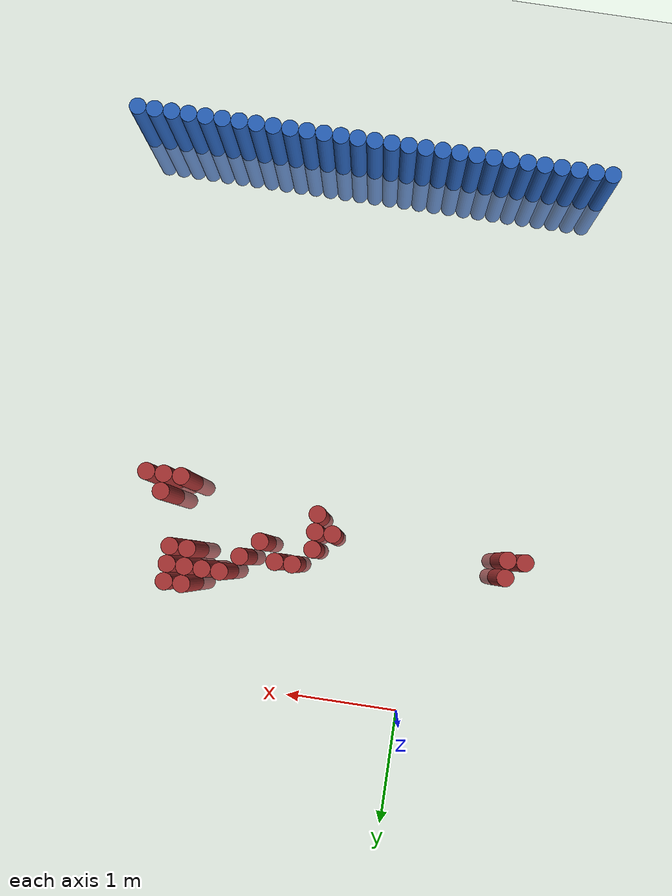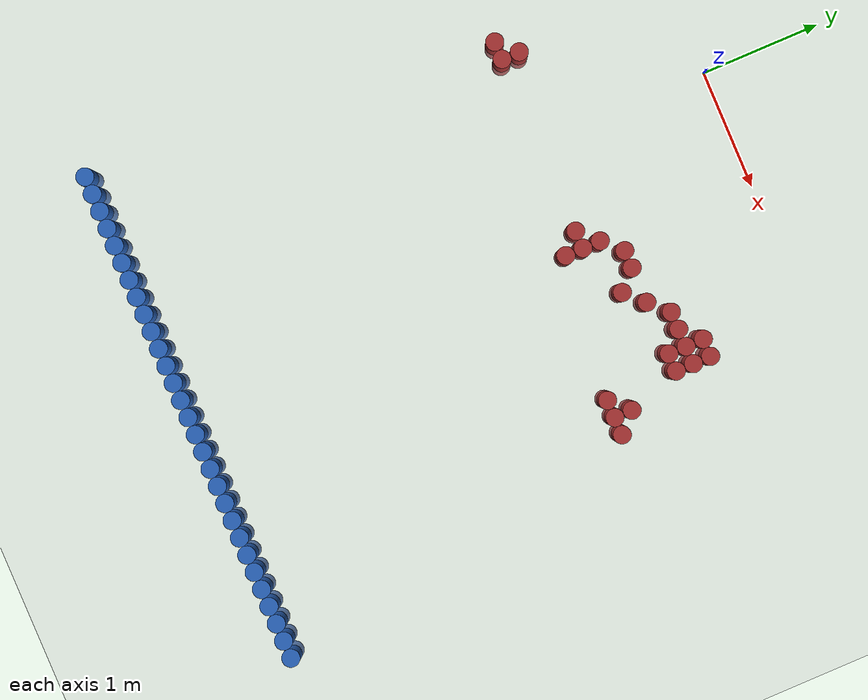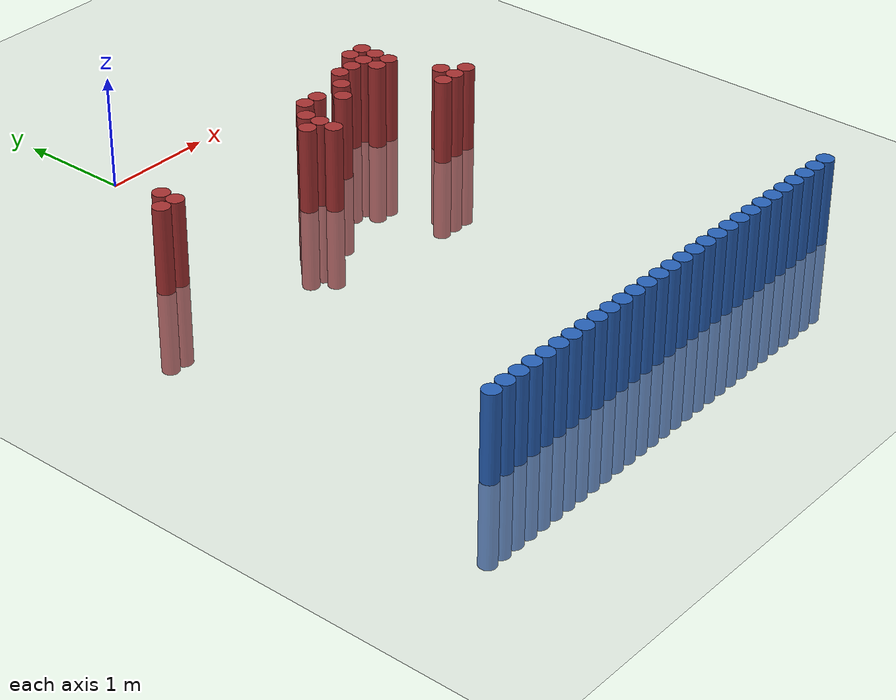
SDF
<sdf version="1.6">
 <world name="default">
  <model name="ground_plane">
   <static>1</static>
   <link name="link">
    <collision name="collision">
     <geometry><plane><normal>0 0 1</normal><size>100 100</size></plane></geometry>
     <surface><friction><ode><mu>100</mu><mu2>50</mu2></ode></friction></surface>
    </collision>
    <visual name="visual">
     <cast_shadows>0</cast_shadows>
     <geometry><plane><normal>0 0 1</normal><size>100 100</size></plane></geometry>
     <material>
      <script><uri>file://media/materials/scripts/gazebo.material</uri><name>Gazebo/Grey</name></script>
     </material>
    </visual>
   </link>
  </model>
  <model name="unit_cylinder_6">
   <static>1</static>
   <pose>3.025000 -4.925000 0.000000 0.000000 0.000000 0.000000</pose>
   <link name="link">
    <inertial>
     <mass>1</mass>
     <inertia><ixx>0.145833</ixx><ixy>0</ixy><ixz>0</ixz><iyy>0.145833</iyy><iyz>0</iyz><izz>0.125</izz></inertia>
    </inertial>
    <collision name="collision">
     <geometry><cylinder><radius>0.075000</radius><length>1.5</length></cylinder></geometry>
    </collision>
    <visual name="visual">
     <geometry><cylinder><radius>0.075000</radius><length>1.5</length></cylinder></geometry>
     <material>
      <ambient>0.152000 0.379000 0.720000 1</ambient>
      <diffuse>0.152000 0.379000 0.720000 1</diffuse>
     </material>
     <material>
      <script><name>Gazebo/Grey</name><uri>file://media/materials/scripts/gazebo.material</uri></script>
     </material>
    </visual>
   </link>
  </model>
  <model name="unit_cylinder_7">
   <static>1</static>
   <pose>2.875000 -4.925000 0.000000 0.000000 0.000000 0.000000</pose>
   <link name="link">
    <inertial>
     <mass>1</mass>
     <inertia><ixx>0.145833</ixx><ixy>0</ixy><ixz>0</ixz><iyy>0.145833</iyy><iyz>0</iyz><izz>0.125</izz></inertia>
    </inertial>
    <collision name="collision">
     <geometry><cylinder><radius>0.075000</radius><length>1.5</length></cylinder></geometry>
    </collision>
    <visual name="visual">
     <geometry><cylinder><radius>0.075000</radius><length>1.5</length></cylinder></geometry>
     <material>
      <ambient>0.152000 0.379000 0.720000 1</ambient>
      <diffuse>0.152000 0.379000 0.720000 1</diffuse>
     </material>
     <material>
      <script><name>Gazebo/Grey</name><uri>file://media/materials/scripts/gazebo.material</uri></script>
     </material>
    </visual>
   </link>
  </model>
  <model name="unit_cylinder_8">
   <static>1</static>
   <pose>2.725000 -4.925000 0.000000 0.000000 0.000000 0.000000</pose>
   <link name="link">
    <inertial>
     <mass>1</mass>
     <inertia><ixx>0.145833</ixx><ixy>0</ixy><ixz>0</ixz><iyy>0.145833</iyy><iyz>0</iyz><izz>0.125</izz></inertia>
    </inertial>
    <collision name="collision">
     <geometry><cylinder><radius>0.075000</radius><length>1.5</length></cylinder></geometry>
    </collision>
    <visual name="visual">
     <geometry><cylinder><radius>0.075000</radius><length>1.5</length></cylinder></geometry>
     <material>
      <ambient>0.152000 0.379000 0.720000 1</ambient>
      <diffuse>0.152000 0.379000 0.720000 1</diffuse>
     </material>
     <material>
      <script><name>Gazebo/Grey</name><uri>file://media/materials/scripts/gazebo.material</uri></script>
     </material>
    </visual>
   </link>
  </model>
  <model name="unit_cylinder_9">
   <static>1</static>
   <pose>2.575000 -4.925000 0.000000 0.000000 0.000000 0.000000</pose>
   <link name="link">
    <inertial>
     <mass>1</mass>
     <inertia><ixx>0.145833</ixx><ixy>0</ixy><ixz>0</ixz><iyy>0.145833</iyy><iyz>0</iyz><izz>0.125</izz></inertia>
    </inertial>
    <collision name="collision">
     <geometry><cylinder><radius>0.075000</radius><length>1.5</length></cylinder></geometry>
    </collision>
    <visual name="visual">
     <geometry><cylinder><radius>0.075000</radius><length>1.5</length></cylinder></geometry>
     <material>
      <ambient>0.152000 0.379000 0.720000 1</ambient>
      <diffuse>0.152000 0.379000 0.720000 1</diffuse>
     </material>
     <material>
      <script><name>Gazebo/Grey</name><uri>file://media/materials/scripts/gazebo.material</uri></script>
     </material>
    </visual>
   </link>
  </model>
  <model name="unit_cylinder_10">
   <static>1</static>
   <pose>2.425000 -4.925000 0.000000 0.000000 0.000000 0.000000</pose>
   <link name="link">
    <inertial>
     <mass>1</mass>
     <inertia><ixx>0.145833</ixx><ixy>0</ixy><ixz>0</ixz><iyy>0.145833</iyy><iyz>0</iyz><izz>0.125</izz></inertia>
    </inertial>
    <collision name="collision">
     <geometry><cylinder><radius>0.075000</radius><length>1.5</length></cylinder></geometry>
    </collision>
    <visual name="visual">
     <geometry><cylinder><radius>0.075000</radius><length>1.5</length></cylinder></geometry>
     <material>
      <ambient>0.152000 0.379000 0.720000 1</ambient>
      <diffuse>0.152000 0.379000 0.720000 1</diffuse>
     </material>
     <material>
      <script><name>Gazebo/Grey</name><uri>file://media/materials/scripts/gazebo.material</uri></script>
     </material>
    </visual>
   </link>
  </model>
  <model name="unit_cylinder_11">
   <static>1</static>
   <pose>2.275000 -4.925000 0.000000 0.000000 0.000000 0.000000</pose>
   <link name="link">
    <inertial>
     <mass>1</mass>
     <inertia><ixx>0.145833</ixx><ixy>0</ixy><ixz>0</ixz><iyy>0.145833</iyy><iyz>0</iyz><izz>0.125</izz></inertia>
    </inertial>
    <collision name="collision">
     <geometry><cylinder><radius>0.075000</radius><length>1.5</length></cylinder></geometry>
    </collision>
    <visual name="visual">
     <geometry><cylinder><radius>0.075000</radius><length>1.5</length></cylinder></geometry>
     <material>
      <ambient>0.152000 0.379000 0.720000 1</ambient>
      <diffuse>0.152000 0.379000 0.720000 1</diffuse>
     </material>
     <material>
      <script><name>Gazebo/Grey</name><uri>file://media/materials/scripts/gazebo.material</uri></script>
     </material>
    </visual>
   </link>
  </model>
  <model name="unit_cylinder_12">
   <static>1</static>
   <pose>2.125000 -4.925000 0.000000 0.000000 0.000000 0.000000</pose>
   <link name="link">
    <inertial>
     <mass>1</mass>
     <inertia><ixx>0.145833</ixx><ixy>0</ixy><ixz>0</ixz><iyy>0.145833</iyy><iyz>0</iyz><izz>0.125</izz></inertia>
    </inertial>
    <collision name="collision">
     <geometry><cylinder><radius>0.075000</radius><length>1.5</length></cylinder></geometry>
    </collision>
    <visual name="visual">
     <geometry><cylinder><radius>0.075000</radius><length>1.5</length></cylinder></geometry>
     <material>
      <ambient>0.152000 0.379000 0.720000 1</ambient>
      <diffuse>0.152000 0.379000 0.720000 1</diffuse>
     </material>
     <material>
      <script><name>Gazebo/Grey</name><uri>file://media/materials/scripts/gazebo.material</uri></script>
     </material>
    </visual>
   </link>
  </model>
  <model name="unit_cylinder_13">
   <static>1</static>
   <pose>1.975000 -4.925000 0.000000 0.000000 0.000000 0.000000</pose>
   <link name="link">
    <inertial>
     <mass>1</mass>
     <inertia><ixx>0.145833</ixx><ixy>0</ixy><ixz>0</ixz><iyy>0.145833</iyy><iyz>0</iyz><izz>0.125</izz></inertia>
    </inertial>
    <collision name="collision">
     <geometry><cylinder><radius>0.075000</radius><length>1.5</length></cylinder></geometry>
    </collision>
    <visual name="visual">
     <geometry><cylinder><radius>0.075000</radius><length>1.5</length></cylinder></geometry>
     <material>
      <ambient>0.152000 0.379000 0.720000 1</ambient>
      <diffuse>0.152000 0.379000 0.720000 1</diffuse>
     </material>
     <material>
      <script><name>Gazebo/Grey</name><uri>file://media/materials/scripts/gazebo.material</uri></script>
     </material>
    </visual>
   </link>
  </model>
  <model name="unit_cylinder_14">
   <static>1</static>
   <pose>1.825000 -4.925000 0.000000 0.000000 0.000000 0.000000</pose>
   <link name="link">
    <inertial>
     <mass>1</mass>
     <inertia><ixx>0.145833</ixx><ixy>0</ixy><ixz>0</ixz><iyy>0.145833</iyy><iyz>0</iyz><izz>0.125</izz></inertia>
    </inertial>
    <collision name="collision">
     <geometry><cylinder><radius>0.075000</radius><length>1.5</length></cylinder></geometry>
    </collision>
    <visual name="visual">
     <geometry><cylinder><radius>0.075000</radius><length>1.5</length></cylinder></geometry>
     <material>
      <ambient>0.152000 0.379000 0.720000 1</ambient>
      <diffuse>0.152000 0.379000 0.720000 1</diffuse>
     </material>
     <material>
      <script><name>Gazebo/Grey</name><uri>file://media/materials/scripts/gazebo.material</uri></script>
     </material>
    </visual>
   </link>
  </model>
  <model name="unit_cylinder_15">
   <static>1</static>
   <pose>1.675000 -4.925000 0.000000 0.000000 0.000000 0.000000</pose>
   <link name="link">
    <inertial>
     <mass>1</mass>
     <inertia><ixx>0.145833</ixx><ixy>0</ixy><ixz>0</ixz><iyy>0.145833</iyy><iyz>0</iyz><izz>0.125</izz></inertia>
    </inertial>
    <collision name="collision">
     <geometry><cylinder><radius>0.075000</radius><length>1.5</length></cylinder></geometry>
    </collision>
    <visual name="visual">
     <geometry><cylinder><radius>0.075000</radius><length>1.5</length></cylinder></geometry>
     <material>
      <ambient>0.152000 0.379000 0.720000 1</ambient>
      <diffuse>0.152000 0.379000 0.720000 1</diffuse>
     </material>
     <material>
      <script><name>Gazebo/Grey</name><uri>file://media/materials/scripts/gazebo.material</uri></script>
     </material>
    </visual>
   </link>
  </model>
  <model name="unit_cylinder_16">
   <static>1</static>
   <pose>1.525000 -4.925000 0.000000 0.000000 0.000000 0.000000</pose>
   <link name="link">
    <inertial>
     <mass>1</mass>
     <inertia><ixx>0.145833</ixx><ixy>0</ixy><ixz>0</ixz><iyy>0.145833</iyy><iyz>0</iyz><izz>0.125</izz></inertia>
    </inertial>
    <collision name="collision">
     <geometry><cylinder><radius>0.075000</radius><length>1.5</length></cylinder></geometry>
    </collision>
    <visual name="visual">
     <geometry><cylinder><radius>0.075000</radius><length>1.5</length></cylinder></geometry>
     <material>
      <ambient>0.152000 0.379000 0.720000 1</ambient>
      <diffuse>0.152000 0.379000 0.720000 1</diffuse>
     </material>
     <material>
      <script><name>Gazebo/Grey</name><uri>file://media/materials/scripts/gazebo.material</uri></script>
     </material>
    </visual>
   </link>
  </model>
  <model name="unit_cylinder_17">
   <static>1</static>
   <pose>1.375000 -4.925000 0.000000 0.000000 0.000000 0.000000</pose>
   <link name="link">
    <inertial>
     <mass>1</mass>
     <inertia><ixx>0.145833</ixx><ixy>0</ixy><ixz>0</ixz><iyy>0.145833</iyy><iyz>0</iyz><izz>0.125</izz></inertia>
    </inertial>
    <collision name="collision">
     <geometry><cylinder><radius>0.075000</radius><length>1.5</length></cylinder></geometry>
    </collision>
    <visual name="visual">
     <geometry><cylinder><radius>0.075000</radius><length>1.5</length></cylinder></geometry>
     <material>
      <ambient>0.152000 0.379000 0.720000 1</ambient>
      <diffuse>0.152000 0.379000 0.720000 1</diffuse>
     </material>
     <material>
      <script><name>Gazebo/Grey</name><uri>file://media/materials/scripts/gazebo.material</uri></script>
     </material>
    </visual>
   </link>
  </model>
  <model name="unit_cylinder_18">
   <static>1</static>
   <pose>1.225000 -4.925000 0.000000 0.000000 0.000000 0.000000</pose>
   <link name="link">
    <inertial>
     <mass>1</mass>
     <inertia><ixx>0.145833</ixx><ixy>0</ixy><ixz>0</ixz><iyy>0.145833</iyy><iyz>0</iyz><izz>0.125</izz></inertia>
    </inertial>
    <collision name="collision">
     <geometry><cylinder><radius>0.075000</radius><length>1.5</length></cylinder></geometry>
    </collision>
    <visual name="visual">
     <geometry><cylinder><radius>0.075000</radius><length>1.5</length></cylinder></geometry>
     <material>
      <ambient>0.152000 0.379000 0.720000 1</ambient>
      <diffuse>0.152000 0.379000 0.720000 1</diffuse>
     </material>
     <material>
      <script><name>Gazebo/Grey</name><uri>file://media/materials/scripts/gazebo.material</uri></script>
     </material>
    </visual>
   </link>
  </model>
  <model name="unit_cylinder_19">
   <static>1</static>
   <pose>1.075000 -4.925000 0.000000 0.000000 0.000000 0.000000</pose>
   <link name="link">
    <inertial>
     <mass>1</mass>
     <inertia><ixx>0.145833</ixx><ixy>0</ixy><ixz>0</ixz><iyy>0.145833</iyy><iyz>0</iyz><izz>0.125</izz></inertia>
    </inertial>
    <collision name="collision">
     <geometry><cylinder><radius>0.075000</radius><length>1.5</length></cylinder></geometry>
    </collision>
    <visual name="visual">
     <geometry><cylinder><radius>0.075000</radius><length>1.5</length></cylinder></geometry>
     <material>
      <ambient>0.152000 0.379000 0.720000 1</ambient>
      <diffuse>0.152000 0.379000 0.720000 1</diffuse>
     </material>
     <material>
      <script><name>Gazebo/Grey</name><uri>file://media/materials/scripts/gazebo.material</uri></script>
     </material>
    </visual>
   </link>
  </model>
  <model name="unit_cylinder_20">
   <static>1</static>
   <pose>0.925000 -4.925000 0.000000 0.000000 0.000000 0.000000</pose>
   <link name="link">
    <inertial>
     <mass>1</mass>
     <inertia><ixx>0.145833</ixx><ixy>0</ixy><ixz>0</ixz><iyy>0.145833</iyy><iyz>0</iyz><izz>0.125</izz></inertia>
    </inertial>
    <collision name="collision">
     <geometry><cylinder><radius>0.075000</radius><length>1.5</length></cylinder></geometry>
    </collision>
    <visual name="visual">
     <geometry><cylinder><radius>0.075000</radius><length>1.5</length></cylinder></geometry>
     <material>
      <ambient>0.152000 0.379000 0.720000 1</ambient>
      <diffuse>0.152000 0.379000 0.720000 1</diffuse>
     </material>
     <material>
      <script><name>Gazebo/Grey</name><uri>file://media/materials/scripts/gazebo.material</uri></script>
     </material>
    </visual>
   </link>
  </model>
  <model name="unit_cylinder_21">
   <static>1</static>
   <pose>0.775000 -4.925000 0.000000 0.000000 0.000000 0.000000</pose>
   <link name="link">
    <inertial>
     <mass>1</mass>
     <inertia><ixx>0.145833</ixx><ixy>0</ixy><ixz>0</ixz><iyy>0.145833</iyy><iyz>0</iyz><izz>0.125</izz></inertia>
    </inertial>
    <collision name="collision">
     <geometry><cylinder><radius>0.075000</radius><length>1.5</length></cylinder></geometry>
    </collision>
    <visual name="visual">
     <geometry><cylinder><radius>0.075000</radius><length>1.5</length></cylinder></geometry>
     <material>
      <ambient>0.152000 0.379000 0.720000 1</ambient>
      <diffuse>0.152000 0.379000 0.720000 1</diffuse>
     </material>
     <material>
      <script><name>Gazebo/Grey</name><uri>file://media/materials/scripts/gazebo.material</uri></script>
     </material>
    </visual>
   </link>
  </model>
  <model name="unit_cylinder_22">
   <static>1</static>
   <pose>0.625000 -4.925000 0.000000 0.000000 0.000000 0.000000</pose>
   <link name="link">
    <inertial>
     <mass>1</mass>
     <inertia><ixx>0.145833</ixx><ixy>0</ixy><ixz>0</ixz><iyy>0.145833</iyy><iyz>0</iyz><izz>0.125</izz></inertia>
    </inertial>
    <collision name="collision">
     <geometry><cylinder><radius>0.075000</radius><length>1.5</length></cylinder></geometry>
    </collision>
    <visual name="visual">
     <geometry><cylinder><radius>0.075000</radius><length>1.5</length></cylinder></geometry>
     <material>
      <ambient>0.152000 0.379000 0.720000 1</ambient>
      <diffuse>0.152000 0.379000 0.720000 1</diffuse>
     </material>
     <material>
      <script><name>Gazebo/Grey</name><uri>file://media/materials/scripts/gazebo.material</uri></script>
     </material>
    </visual>
   </link>
  </model>
  <model name="unit_cylinder_23">
   <static>1</static>
   <pose>0.475000 -4.925000 0.000000 0.000000 0.000000 0.000000</pose>
   <link name="link">
    <inertial>
     <mass>1</mass>
     <inertia><ixx>0.145833</ixx><ixy>0</ixy><ixz>0</ixz><iyy>0.145833</iyy><iyz>0</iyz><izz>0.125</izz></inertia>
    </inertial>
    <collision name="collision">
     <geometry><cylinder><radius>0.075000</radius><length>1.5</length></cylinder></geometry>
    </collision>
    <visual name="visual">
     <geometry><cylinder><radius>0.075000</radius><length>1.5</length></cylinder></geometry>
     <material>
      <ambient>0.152000 0.379000 0.720000 1</ambient>
      <diffuse>0.152000 0.379000 0.720000 1</diffuse>
     </material>
     <material>
      <script><name>Gazebo/Grey</name><uri>file://media/materials/scripts/gazebo.material</uri></script>
     </material>
    </visual>
   </link>
  </model>
  <model name="unit_cylinder_24">
   <static>1</static>
   <pose>0.325000 -4.925000 0.000000 0.000000 0.000000 0.000000</pose>
   <link name="link">
    <inertial>
     <mass>1</mass>
     <inertia><ixx>0.145833</ixx><ixy>0</ixy><ixz>0</ixz><iyy>0.145833</iyy><iyz>0</iyz><izz>0.125</izz></inertia>
    </inertial>
    <collision name="collision">
     <geometry><cylinder><radius>0.075000</radius><length>1.5</length></cylinder></geometry>
    </collision>
    <visual name="visual">
     <geometry><cylinder><radius>0.075000</radius><length>1.5</length></cylinder></geometry>
     <material>
      <ambient>0.152000 0.379000 0.720000 1</ambient>
      <diffuse>0.152000 0.379000 0.720000 1</diffuse>
     </material>
     <material>
      <script><name>Gazebo/Grey</name><uri>file://media/materials/scripts/gazebo.material</uri></script>
     </material>
    </visual>
   </link>
  </model>
  <model name="unit_cylinder_25">
   <static>1</static>
   <pose>0.175000 -4.925000 0.000000 0.000000 0.000000 0.000000</pose>
   <link name="link">
    <inertial>
     <mass>1</mass>
     <inertia><ixx>0.145833</ixx><ixy>0</ixy><ixz>0</ixz><iyy>0.145833</iyy><iyz>0</iyz><izz>0.125</izz></inertia>
    </inertial>
    <collision name="collision">
     <geometry><cylinder><radius>0.075000</radius><length>1.5</length></cylinder></geometry>
    </collision>
    <visual name="visual">
     <geometry><cylinder><radius>0.075000</radius><length>1.5</length></cylinder></geometry>
     <material>
      <ambient>0.152000 0.379000 0.720000 1</ambient>
      <diffuse>0.152000 0.379000 0.720000 1</diffuse>
     </material>
     <material>
      <script><name>Gazebo/Grey</name><uri>file://media/materials/scripts/gazebo.material</uri></script>
     </material>
    </visual>
   </link>
  </model>
  <model name="unit_cylinder_26">
   <static>1</static>
   <pose>0.025000 -4.925000 0.000000 0.000000 0.000000 0.000000</pose>
   <link name="link">
    <inertial>
     <mass>1</mass>
     <inertia><ixx>0.145833</ixx><ixy>0</ixy><ixz>0</ixz><iyy>0.145833</iyy><iyz>0</iyz><izz>0.125</izz></inertia>
    </inertial>
    <collision name="collision">
     <geometry><cylinder><radius>0.075000</radius><length>1.5</length></cylinder></geometry>
    </collision>
    <visual name="visual">
     <geometry><cylinder><radius>0.075000</radius><length>1.5</length></cylinder></geometry>
     <material>
      <ambient>0.152000 0.379000 0.720000 1</ambient>
      <diffuse>0.152000 0.379000 0.720000 1</diffuse>
     </material>
     <material>
      <script><name>Gazebo/Grey</name><uri>file://media/materials/scripts/gazebo.material</uri></script>
     </material>
    </visual>
   </link>
  </model>
  <model name="unit_cylinder_27">
   <static>1</static>
   <pose>-0.125000 -4.925000 0.000000 0.000000 0.000000 0.000000</pose>
   <link name="link">
    <inertial>
     <mass>1</mass>
     <inertia><ixx>0.145833</ixx><ixy>0</ixy><ixz>0</ixz><iyy>0.145833</iyy><iyz>0</iyz><izz>0.125</izz></inertia>
    </inertial>
    <collision name="collision">
     <geometry><cylinder><radius>0.075000</radius><length>1.5</length></cylinder></geometry>
    </collision>
    <visual name="visual">
     <geometry><cylinder><radius>0.075000</radius><length>1.5</length></cylinder></geometry>
     <material>
      <ambient>0.152000 0.379000 0.720000 1</ambient>
      <diffuse>0.152000 0.379000 0.720000 1</diffuse>
     </material>
     <material>
      <script><name>Gazebo/Grey</name><uri>file://media/materials/scripts/gazebo.material</uri></script>
     </material>
    </visual>
   </link>
  </model>
  <model name="unit_cylinder_28">
   <static>1</static>
   <pose>-0.275000 -4.925000 0.000000 0.000000 0.000000 0.000000</pose>
   <link name="link">
    <inertial>
     <mass>1</mass>
     <inertia><ixx>0.145833</ixx><ixy>0</ixy><ixz>0</ixz><iyy>0.145833</iyy><iyz>0</iyz><izz>0.125</izz></inertia>
    </inertial>
    <collision name="collision">
     <geometry><cylinder><radius>0.075000</radius><length>1.5</length></cylinder></geometry>
    </collision>
    <visual name="visual">
     <geometry><cylinder><radius>0.075000</radius><length>1.5</length></cylinder></geometry>
     <material>
      <ambient>0.152000 0.379000 0.720000 1</ambient>
      <diffuse>0.152000 0.379000 0.720000 1</diffuse>
     </material>
     <material>
      <script><name>Gazebo/Grey</name><uri>file://media/materials/scripts/gazebo.material</uri></script>
     </material>
    </visual>
   </link>
  </model>
  <model name="unit_cylinder_29">
   <static>1</static>
   <pose>-0.425000 -4.925000 0.000000 0.000000 0.000000 0.000000</pose>
   <link name="link">
    <inertial>
     <mass>1</mass>
     <inertia><ixx>0.145833</ixx><ixy>0</ixy><ixz>0</ixz><iyy>0.145833</iyy><iyz>0</iyz><izz>0.125</izz></inertia>
    </inertial>
    <collision name="collision">
     <geometry><cylinder><radius>0.075000</radius><length>1.5</length></cylinder></geometry>
    </collision>
    <visual name="visual">
     <geometry><cylinder><radius>0.075000</radius><length>1.5</length></cylinder></geometry>
     <material>
      <ambient>0.152000 0.379000 0.720000 1</ambient>
      <diffuse>0.152000 0.379000 0.720000 1</diffuse>
     </material>
     <material>
      <script><name>Gazebo/Grey</name><uri>file://media/materials/scripts/gazebo.material</uri></script>
     </material>
    </visual>
   </link>
  </model>
  <model name="unit_cylinder_30">
   <static>1</static>
   <pose>-0.575000 -4.925000 0.000000 0.000000 0.000000 0.000000</pose>
   <link name="link">
    <inertial>
     <mass>1</mass>
     <inertia><ixx>0.145833</ixx><ixy>0</ixy><ixz>0</ixz><iyy>0.145833</iyy><iyz>0</iyz><izz>0.125</izz></inertia>
    </inertial>
    <collision name="collision">
     <geometry><cylinder><radius>0.075000</radius><length>1.5</length></cylinder></geometry>
    </collision>
    <visual name="visual">
     <geometry><cylinder><radius>0.075000</radius><length>1.5</length></cylinder></geometry>
     <material>
      <ambient>0.152000 0.379000 0.720000 1</ambient>
      <diffuse>0.152000 0.379000 0.720000 1</diffuse>
     </material>
     <material>
      <script><name>Gazebo/Grey</name><uri>file://media/materials/scripts/gazebo.material</uri></script>
     </material>
    </visual>
   </link>
  </model>
  <model name="unit_cylinder_31">
   <static>1</static>
   <pose>-0.725000 -4.925000 0.000000 0.000000 0.000000 0.000000</pose>
   <link name="link">
    <inertial>
     <mass>1</mass>
     <inertia><ixx>0.145833</ixx><ixy>0</ixy><ixz>0</ixz><iyy>0.145833</iyy><iyz>0</iyz><izz>0.125</izz></inertia>
    </inertial>
    <collision name="collision">
     <geometry><cylinder><radius>0.075000</radius><length>1.5</length></cylinder></geometry>
    </collision>
    <visual name="visual">
     <geometry><cylinder><radius>0.075000</radius><length>1.5</length></cylinder></geometry>
     <material>
      <ambient>0.152000 0.379000 0.720000 1</ambient>
      <diffuse>0.152000 0.379000 0.720000 1</diffuse>
     </material>
     <material>
      <script><name>Gazebo/Grey</name><uri>file://media/materials/scripts/gazebo.material</uri></script>
     </material>
    </visual>
   </link>
  </model>
  <model name="unit_cylinder_32">
   <static>1</static>
   <pose>-0.875000 -4.925000 0.000000 0.000000 0.000000 0.000000</pose>
   <link name="link">
    <inertial>
     <mass>1</mass>
     <inertia><ixx>0.145833</ixx><ixy>0</ixy><ixz>0</ixz><iyy>0.145833</iyy><iyz>0</iyz><izz>0.125</izz></inertia>
    </inertial>
    <collision name="collision">
     <geometry><cylinder><radius>0.075000</radius><length>1.5</length></cylinder></geometry>
    </collision>
    <visual name="visual">
     <geometry><cylinder><radius>0.075000</radius><length>1.5</length></cylinder></geometry>
     <material>
      <ambient>0.152000 0.379000 0.720000 1</ambient>
      <diffuse>0.152000 0.379000 0.720000 1</diffuse>
     </material>
     <material>
      <script><name>Gazebo/Grey</name><uri>file://media/materials/scripts/gazebo.material</uri></script>
     </material>
    </visual>
   </link>
  </model>
  <model name="unit_cylinder_33">
   <static>1</static>
   <pose>-1.025000 -4.925000 0.000000 0.000000 0.000000 0.000000</pose>
   <link name="link">
    <inertial>
     <mass>1</mass>
     <inertia><ixx>0.145833</ixx><ixy>0</ixy><ixz>0</ixz><iyy>0.145833</iyy><iyz>0</iyz><izz>0.125</izz></inertia>
    </inertial>
    <collision name="collision">
     <geometry><cylinder><radius>0.075000</radius><length>1.5</length></cylinder></geometry>
    </collision>
    <visual name="visual">
     <geometry><cylinder><radius>0.075000</radius><length>1.5</length></cylinder></geometry>
     <material>
      <ambient>0.152000 0.379000 0.720000 1</ambient>
      <diffuse>0.152000 0.379000 0.720000 1</diffuse>
     </material>
     <material>
      <script><name>Gazebo/Grey</name><uri>file://media/materials/scripts/gazebo.material</uri></script>
     </material>
    </visual>
   </link>
  </model>
  <model name="unit_cylinder_34">
   <static>1</static>
   <pose>-1.175000 -4.925000 0.000000 0.000000 0.000000 0.000000</pose>
   <link name="link">
    <inertial>
     <mass>1</mass>
     <inertia><ixx>0.145833</ixx><ixy>0</ixy><ixz>0</ixz><iyy>0.145833</iyy><iyz>0</iyz><izz>0.125</izz></inertia>
    </inertial>
    <collision name="collision">
     <geometry><cylinder><radius>0.075000</radius><length>1.5</length></cylinder></geometry>
    </collision>
    <visual name="visual">
     <geometry><cylinder><radius>0.075000</radius><length>1.5</length></cylinder></geometry>
     <material>
      <ambient>0.152000 0.379000 0.720000 1</ambient>
      <diffuse>0.152000 0.379000 0.720000 1</diffuse>
     </material>
     <material>
      <script><name>Gazebo/Grey</name><uri>file://media/materials/scripts/gazebo.material</uri></script>
     </material>
    </visual>
   </link>
  </model>
  <model name="unit_cylinder_441">
   <static>1</static>
   <pose>-0.875000 -1.475000 0.000000 0.000000 0.000000 0.000000</pose>
   <link name="link">
    <inertial>
     <mass>1</mass>
     <inertia><ixx>0.145833</ixx><ixy>0</ixy><ixz>0</ixz><iyy>0.145833</iyy><iyz>0</iyz><izz>0.125</izz></inertia>
    </inertial>
    <collision name="collision">
     <geometry><cylinder><radius>0.075000</radius><length>1.5</length></cylinder></geometry>
    </collision>
    <visual name="visual">
     <geometry><cylinder><radius>0.075000</radius><length>1.5</length></cylinder></geometry>
     <material>
      <ambient>0.648000 0.192000 0.192000 1</ambient>
      <diffuse>0.648000 0.192000 0.192000 1</diffuse>
     </material>
     <material>
      <script><name>Gazebo/Grey</name><uri>file://media/materials/scripts/gazebo.material</uri></script>
     </material>
    </visual>
   </link>
  </model>
  <model name="unit_cylinder_444">
   <static>1</static>
   <pose>-0.725000 -1.475000 0.000000 0.000000 0.000000 0.000000</pose>
   <link name="link">
    <inertial>
     <mass>1</mass>
     <inertia><ixx>0.145833</ixx><ixy>0</ixy><ixz>0</ixz><iyy>0.145833</iyy><iyz>0</iyz><izz>0.125</izz></inertia>
    </inertial>
    <collision name="collision">
     <geometry><cylinder><radius>0.075000</radius><length>1.5</length></cylinder></geometry>
    </collision>
    <visual name="visual">
     <geometry><cylinder><radius>0.075000</radius><length>1.5</length></cylinder></geometry>
     <material>
      <ambient>0.648000 0.192000 0.192000 1</ambient>
      <diffuse>0.648000 0.192000 0.192000 1</diffuse>
     </material>
     <material>
      <script><name>Gazebo/Grey</name><uri>file://media/materials/scripts/gazebo.material</uri></script>
     </material>
    </visual>
   </link>
  </model>
  <model name="unit_cylinder_445">
   <static>1</static>
   <pose>-0.725000 -1.325000 0.000000 0.000000 0.000000 0.000000</pose>
   <link name="link">
    <inertial>
     <mass>1</mass>
     <inertia><ixx>0.145833</ixx><ixy>0</ixy><ixz>0</ixz><iyy>0.145833</iyy><iyz>0</iyz><izz>0.125</izz></inertia>
    </inertial>
    <collision name="collision">
     <geometry><cylinder><radius>0.075000</radius><length>1.5</length></cylinder></geometry>
    </collision>
    <visual name="visual">
     <geometry><cylinder><radius>0.075000</radius><length>1.5</length></cylinder></geometry>
     <material>
      <ambient>0.648000 0.192000 0.192000 1</ambient>
      <diffuse>0.648000 0.192000 0.192000 1</diffuse>
     </material>
     <material>
      <script><name>Gazebo/Grey</name><uri>file://media/materials/scripts/gazebo.material</uri></script>
     </material>
    </visual>
   </link>
  </model>
  <model name="unit_cylinder_471">
   <static>1</static>
   <pose>0.775000 -1.475000 0.000000 0.000000 0.000000 0.000000</pose>
   <link name="link">
    <inertial>
     <mass>1</mass>
     <inertia><ixx>0.145833</ixx><ixy>0</ixy><ixz>0</ixz><iyy>0.145833</iyy><iyz>0</iyz><izz>0.125</izz></inertia>
    </inertial>
    <collision name="collision">
     <geometry><cylinder><radius>0.075000</radius><length>1.5</length></cylinder></geometry>
    </collision>
    <visual name="visual">
     <geometry><cylinder><radius>0.075000</radius><length>1.5</length></cylinder></geometry>
     <material>
      <ambient>0.648000 0.192000 0.192000 1</ambient>
      <diffuse>0.648000 0.192000 0.192000 1</diffuse>
     </material>
     <material>
      <script><name>Gazebo/Grey</name><uri>file://media/materials/scripts/gazebo.material</uri></script>
     </material>
    </visual>
   </link>
  </model>
  <model name="unit_cylinder_474">
   <static>1</static>
   <pose>0.925000 -1.625000 0.000000 0.000000 0.000000 0.000000</pose>
   <link name="link">
    <inertial>
     <mass>1</mass>
     <inertia><ixx>0.145833</ixx><ixy>0</ixy><ixz>0</ixz><iyy>0.145833</iyy><iyz>0</iyz><izz>0.125</izz></inertia>
    </inertial>
    <collision name="collision">
     <geometry><cylinder><radius>0.075000</radius><length>1.5</length></cylinder></geometry>
    </collision>
    <visual name="visual">
     <geometry><cylinder><radius>0.075000</radius><length>1.5</length></cylinder></geometry>
     <material>
      <ambient>0.648000 0.192000 0.192000 1</ambient>
      <diffuse>0.648000 0.192000 0.192000 1</diffuse>
     </material>
     <material>
      <script><name>Gazebo/Grey</name><uri>file://media/materials/scripts/gazebo.material</uri></script>
     </material>
    </visual>
   </link>
  </model>
  <model name="unit_cylinder_475">
   <static>1</static>
   <pose>0.925000 -1.475000 0.000000 0.000000 0.000000 0.000000</pose>
   <link name="link">
    <inertial>
     <mass>1</mass>
     <inertia><ixx>0.145833</ixx><ixy>0</ixy><ixz>0</ixz><iyy>0.145833</iyy><iyz>0</iyz><izz>0.125</izz></inertia>
    </inertial>
    <collision name="collision">
     <geometry><cylinder><radius>0.075000</radius><length>1.5</length></cylinder></geometry>
    </collision>
    <visual name="visual">
     <geometry><cylinder><radius>0.075000</radius><length>1.5</length></cylinder></geometry>
     <material>
      <ambient>0.648000 0.192000 0.192000 1</ambient>
      <diffuse>0.648000 0.192000 0.192000 1</diffuse>
     </material>
     <material>
      <script><name>Gazebo/Grey</name><uri>file://media/materials/scripts/gazebo.material</uri></script>
     </material>
    </visual>
   </link>
  </model>
  <model name="unit_cylinder_476">
   <static>1</static>
   <pose>0.925000 -1.325000 0.000000 0.000000 0.000000 0.000000</pose>
   <link name="link">
    <inertial>
     <mass>1</mass>
     <inertia><ixx>0.145833</ixx><ixy>0</ixy><ixz>0</ixz><iyy>0.145833</iyy><iyz>0</iyz><izz>0.125</izz></inertia>
    </inertial>
    <collision name="collision">
     <geometry><cylinder><radius>0.075000</radius><length>1.5</length></cylinder></geometry>
    </collision>
    <visual name="visual">
     <geometry><cylinder><radius>0.075000</radius><length>1.5</length></cylinder></geometry>
     <material>
      <ambient>0.648000 0.192000 0.192000 1</ambient>
      <diffuse>0.648000 0.192000 0.192000 1</diffuse>
     </material>
     <material>
      <script><name>Gazebo/Grey</name><uri>file://media/materials/scripts/gazebo.material</uri></script>
     </material>
    </visual>
   </link>
  </model>
  <model name="unit_cylinder_477">
   <static>1</static>
   <pose>1.075000 -1.175000 0.000000 0.000000 0.000000 0.000000</pose>
   <link name="link">
    <inertial>
     <mass>1</mass>
     <inertia><ixx>0.145833</ixx><ixy>0</ixy><ixz>0</ixz><iyy>0.145833</iyy><iyz>0</iyz><izz>0.125</izz></inertia>
    </inertial>
    <collision name="collision">
     <geometry><cylinder><radius>0.075000</radius><length>1.5</length></cylinder></geometry>
    </collision>
    <visual name="visual">
     <geometry><cylinder><radius>0.075000</radius><length>1.5</length></cylinder></geometry>
     <material>
      <ambient>0.648000 0.192000 0.192000 1</ambient>
      <diffuse>0.648000 0.192000 0.192000 1</diffuse>
     </material>
     <material>
      <script><name>Gazebo/Grey</name><uri>file://media/materials/scripts/gazebo.material</uri></script>
     </material>
    </visual>
   </link>
  </model>
  <model name="unit_cylinder_485">
   <static>1</static>
   <pose>1.225000 -1.175000 0.000000 0.000000 0.000000 0.000000</pose>
   <link name="link">
    <inertial>
     <mass>1</mass>
     <inertia><ixx>0.145833</ixx><ixy>0</ixy><ixz>0</ixz><iyy>0.145833</iyy><iyz>0</iyz><izz>0.125</izz></inertia>
    </inertial>
    <collision name="collision">
     <geometry><cylinder><radius>0.075000</radius><length>1.5</length></cylinder></geometry>
    </collision>
    <visual name="visual">
     <geometry><cylinder><radius>0.075000</radius><length>1.5</length></cylinder></geometry>
     <material>
      <ambient>0.648000 0.192000 0.192000 1</ambient>
      <diffuse>0.648000 0.192000 0.192000 1</diffuse>
     </material>
     <material>
      <script><name>Gazebo/Grey</name><uri>file://media/materials/scripts/gazebo.material</uri></script>
     </material>
    </visual>
   </link>
  </model>
  <model name="unit_cylinder_495">
   <static>1</static>
   <pose>1.375000 -1.325000 0.000000 0.000000 0.000000 0.000000</pose>
   <link name="link">
    <inertial>
     <mass>1</mass>
     <inertia><ixx>0.145833</ixx><ixy>0</ixy><ixz>0</ixz><iyy>0.145833</iyy><iyz>0</iyz><izz>0.125</izz></inertia>
    </inertial>
    <collision name="collision">
     <geometry><cylinder><radius>0.075000</radius><length>1.5</length></cylinder></geometry>
    </collision>
    <visual name="visual">
     <geometry><cylinder><radius>0.075000</radius><length>1.5</length></cylinder></geometry>
     <material>
      <ambient>0.648000 0.192000 0.192000 1</ambient>
      <diffuse>0.648000 0.192000 0.192000 1</diffuse>
     </material>
     <material>
      <script><name>Gazebo/Grey</name><uri>file://media/materials/scripts/gazebo.material</uri></script>
     </material>
    </visual>
   </link>
  </model>
  <model name="unit_cylinder_501">
   <static>1</static>
   <pose>1.525000 -1.175000 0.000000 0.000000 0.000000 0.000000</pose>
   <link name="link">
    <inertial>
     <mass>1</mass>
     <inertia><ixx>0.145833</ixx><ixy>0</ixy><ixz>0</ixz><iyy>0.145833</iyy><iyz>0</iyz><izz>0.125</izz></inertia>
    </inertial>
    <collision name="collision">
     <geometry><cylinder><radius>0.075000</radius><length>1.5</length></cylinder></geometry>
    </collision>
    <visual name="visual">
     <geometry><cylinder><radius>0.075000</radius><length>1.5</length></cylinder></geometry>
     <material>
      <ambient>0.648000 0.192000 0.192000 1</ambient>
      <diffuse>0.648000 0.192000 0.192000 1</diffuse>
     </material>
     <material>
      <script><name>Gazebo/Grey</name><uri>file://media/materials/scripts/gazebo.material</uri></script>
     </material>
    </visual>
   </link>
  </model>
  <model name="unit_cylinder_506">
   <static>1</static>
   <pose>1.675000 -1.025000 0.000000 0.000000 0.000000 0.000000</pose>
   <link name="link">
    <inertial>
     <mass>1</mass>
     <inertia><ixx>0.145833</ixx><ixy>0</ixy><ixz>0</ixz><iyy>0.145833</iyy><iyz>0</iyz><izz>0.125</izz></inertia>
    </inertial>
    <collision name="collision">
     <geometry><cylinder><radius>0.075000</radius><length>1.5</length></cylinder></geometry>
    </collision>
    <visual name="visual">
     <geometry><cylinder><radius>0.075000</radius><length>1.5</length></cylinder></geometry>
     <material>
      <ambient>0.648000 0.192000 0.192000 1</ambient>
      <diffuse>0.648000 0.192000 0.192000 1</diffuse>
     </material>
     <material>
      <script><name>Gazebo/Grey</name><uri>file://media/materials/scripts/gazebo.material</uri></script>
     </material>
    </visual>
   </link>
  </model>
  <model name="unit_cylinder_517">
   <static>1</static>
   <pose>1.825000 -1.025000 0.000000 0.000000 0.000000 0.000000</pose>
   <link name="link">
    <inertial>
     <mass>1</mass>
     <inertia><ixx>0.145833</ixx><ixy>0</ixy><ixz>0</ixz><iyy>0.145833</iyy><iyz>0</iyz><izz>0.125</izz></inertia>
    </inertial>
    <collision name="collision">
     <geometry><cylinder><radius>0.075000</radius><length>1.5</length></cylinder></geometry>
    </collision>
    <visual name="visual">
     <geometry><cylinder><radius>0.075000</radius><length>1.5</length></cylinder></geometry>
     <material>
      <ambient>0.648000 0.192000 0.192000 1</ambient>
      <diffuse>0.648000 0.192000 0.192000 1</diffuse>
     </material>
     <material>
      <script><name>Gazebo/Grey</name><uri>file://media/materials/scripts/gazebo.material</uri></script>
     </material>
    </visual>
   </link>
  </model>
  <model name="unit_cylinder_527">
   <static>1</static>
   <pose>1.975000 -1.175000 0.000000 0.000000 0.000000 0.000000</pose>
   <link name="link">
    <inertial>
     <mass>1</mass>
     <inertia><ixx>0.145833</ixx><ixy>0</ixy><ixz>0</ixz><iyy>0.145833</iyy><iyz>0</iyz><izz>0.125</izz></inertia>
    </inertial>
    <collision name="collision">
     <geometry><cylinder><radius>0.075000</radius><length>1.5</length></cylinder></geometry>
    </collision>
    <visual name="visual">
     <geometry><cylinder><radius>0.075000</radius><length>1.5</length></cylinder></geometry>
     <material>
      <ambient>0.648000 0.192000 0.192000 1</ambient>
      <diffuse>0.648000 0.192000 0.192000 1</diffuse>
     </material>
     <material>
      <script><name>Gazebo/Grey</name><uri>file://media/materials/scripts/gazebo.material</uri></script>
     </material>
    </visual>
   </link>
  </model>
  <model name="unit_cylinder_528">
   <static>1</static>
   <pose>1.975000 -1.025000 0.000000 0.000000 0.000000 0.000000</pose>
   <link name="link">
    <inertial>
     <mass>1</mass>
     <inertia><ixx>0.145833</ixx><ixy>0</ixy><ixz>0</ixz><iyy>0.145833</iyy><iyz>0</iyz><izz>0.125</izz></inertia>
    </inertial>
    <collision name="collision">
     <geometry><cylinder><radius>0.075000</radius><length>1.5</length></cylinder></geometry>
    </collision>
    <visual name="visual">
     <geometry><cylinder><radius>0.075000</radius><length>1.5</length></cylinder></geometry>
     <material>
      <ambient>0.648000 0.192000 0.192000 1</ambient>
      <diffuse>0.648000 0.192000 0.192000 1</diffuse>
     </material>
     <material>
      <script><name>Gazebo/Grey</name><uri>file://media/materials/scripts/gazebo.material</uri></script>
     </material>
    </visual>
   </link>
  </model>
  <model name="unit_cylinder_529">
   <static>1</static>
   <pose>1.975000 -0.875000 0.000000 0.000000 0.000000 0.000000</pose>
   <link name="link">
    <inertial>
     <mass>1</mass>
     <inertia><ixx>0.145833</ixx><ixy>0</ixy><ixz>0</ixz><iyy>0.145833</iyy><iyz>0</iyz><izz>0.125</izz></inertia>
    </inertial>
    <collision name="collision">
     <geometry><cylinder><radius>0.075000</radius><length>1.5</length></cylinder></geometry>
    </collision>
    <visual name="visual">
     <geometry><cylinder><radius>0.075000</radius><length>1.5</length></cylinder></geometry>
     <material>
      <ambient>0.648000 0.192000 0.192000 1</ambient>
      <diffuse>0.648000 0.192000 0.192000 1</diffuse>
     </material>
     <material>
      <script><name>Gazebo/Grey</name><uri>file://media/materials/scripts/gazebo.material</uri></script>
     </material>
    </visual>
   </link>
  </model>
  <model name="unit_cylinder_535">
   <static>1</static>
   <pose>2.125000 -1.775000 0.000000 0.000000 0.000000 0.000000</pose>
   <link name="link">
    <inertial>
     <mass>1</mass>
     <inertia><ixx>0.145833</ixx><ixy>0</ixy><ixz>0</ixz><iyy>0.145833</iyy><iyz>0</iyz><izz>0.125</izz></inertia>
    </inertial>
    <collision name="collision">
     <geometry><cylinder><radius>0.075000</radius><length>1.5</length></cylinder></geometry>
    </collision>
    <visual name="visual">
     <geometry><cylinder><radius>0.075000</radius><length>1.5</length></cylinder></geometry>
     <material>
      <ambient>0.648000 0.192000 0.192000 1</ambient>
      <diffuse>0.648000 0.192000 0.192000 1</diffuse>
     </material>
     <material>
      <script><name>Gazebo/Grey</name><uri>file://media/materials/scripts/gazebo.material</uri></script>
     </material>
    </visual>
   </link>
  </model>
  <model name="unit_cylinder_536">
   <static>1</static>
   <pose>2.125000 -1.175000 0.000000 0.000000 0.000000 0.000000</pose>
   <link name="link">
    <inertial>
     <mass>1</mass>
     <inertia><ixx>0.145833</ixx><ixy>0</ixy><ixz>0</ixz><iyy>0.145833</iyy><iyz>0</iyz><izz>0.125</izz></inertia>
    </inertial>
    <collision name="collision">
     <geometry><cylinder><radius>0.075000</radius><length>1.5</length></cylinder></geometry>
    </collision>
    <visual name="visual">
     <geometry><cylinder><radius>0.075000</radius><length>1.5</length></cylinder></geometry>
     <material>
      <ambient>0.648000 0.192000 0.192000 1</ambient>
      <diffuse>0.648000 0.192000 0.192000 1</diffuse>
     </material>
     <material>
      <script><name>Gazebo/Grey</name><uri>file://media/materials/scripts/gazebo.material</uri></script>
     </material>
    </visual>
   </link>
  </model>
  <model name="unit_cylinder_537">
   <static>1</static>
   <pose>2.125000 -1.025000 0.000000 0.000000 0.000000 0.000000</pose>
   <link name="link">
    <inertial>
     <mass>1</mass>
     <inertia><ixx>0.145833</ixx><ixy>0</ixy><ixz>0</ixz><iyy>0.145833</iyy><iyz>0</iyz><izz>0.125</izz></inertia>
    </inertial>
    <collision name="collision">
     <geometry><cylinder><radius>0.075000</radius><length>1.5</length></cylinder></geometry>
    </collision>
    <visual name="visual">
     <geometry><cylinder><radius>0.075000</radius><length>1.5</length></cylinder></geometry>
     <material>
      <ambient>0.648000 0.192000 0.192000 1</ambient>
      <diffuse>0.648000 0.192000 0.192000 1</diffuse>
     </material>
     <material>
      <script><name>Gazebo/Grey</name><uri>file://media/materials/scripts/gazebo.material</uri></script>
     </material>
    </visual>
   </link>
  </model>
  <model name="unit_cylinder_538">
   <static>1</static>
   <pose>2.125000 -0.875000 0.000000 0.000000 0.000000 0.000000</pose>
   <link name="link">
    <inertial>
     <mass>1</mass>
     <inertia><ixx>0.145833</ixx><ixy>0</ixy><ixz>0</ixz><iyy>0.145833</iyy><iyz>0</iyz><izz>0.125</izz></inertia>
    </inertial>
    <collision name="collision">
     <geometry><cylinder><radius>0.075000</radius><length>1.5</length></cylinder></geometry>
    </collision>
    <visual name="visual">
     <geometry><cylinder><radius>0.075000</radius><length>1.5</length></cylinder></geometry>
     <material>
      <ambient>0.648000 0.192000 0.192000 1</ambient>
      <diffuse>0.648000 0.192000 0.192000 1</diffuse>
     </material>
     <material>
      <script><name>Gazebo/Grey</name><uri>file://media/materials/scripts/gazebo.material</uri></script>
     </material>
    </visual>
   </link>
  </model>
  <model name="unit_cylinder_544">
   <static>1</static>
   <pose>2.275000 -1.775000 0.000000 0.000000 0.000000 0.000000</pose>
   <link name="link">
    <inertial>
     <mass>1</mass>
     <inertia><ixx>0.145833</ixx><ixy>0</ixy><ixz>0</ixz><iyy>0.145833</iyy><iyz>0</iyz><izz>0.125</izz></inertia>
    </inertial>
    <collision name="collision">
     <geometry><cylinder><radius>0.075000</radius><length>1.5</length></cylinder></geometry>
    </collision>
    <visual name="visual">
     <geometry><cylinder><radius>0.075000</radius><length>1.5</length></cylinder></geometry>
     <material>
      <ambient>0.648000 0.192000 0.192000 1</ambient>
      <diffuse>0.648000 0.192000 0.192000 1</diffuse>
     </material>
     <material>
      <script><name>Gazebo/Grey</name><uri>file://media/materials/scripts/gazebo.material</uri></script>
     </material>
    </visual>
   </link>
  </model>
  <model name="unit_cylinder_545">
   <static>1</static>
   <pose>2.275000 -1.625000 0.000000 0.000000 0.000000 0.000000</pose>
   <link name="link">
    <inertial>
     <mass>1</mass>
     <inertia><ixx>0.145833</ixx><ixy>0</ixy><ixz>0</ixz><iyy>0.145833</iyy><iyz>0</iyz><izz>0.125</izz></inertia>
    </inertial>
    <collision name="collision">
     <geometry><cylinder><radius>0.075000</radius><length>1.5</length></cylinder></geometry>
    </collision>
    <visual name="visual">
     <geometry><cylinder><radius>0.075000</radius><length>1.5</length></cylinder></geometry>
     <material>
      <ambient>0.648000 0.192000 0.192000 1</ambient>
      <diffuse>0.648000 0.192000 0.192000 1</diffuse>
     </material>
     <material>
      <script><name>Gazebo/Grey</name><uri>file://media/materials/scripts/gazebo.material</uri></script>
     </material>
    </visual>
   </link>
  </model>
  <model name="unit_cylinder_553">
   <static>1</static>
   <pose>2.425000 -1.775000 0.000000 0.000000 0.000000 0.000000</pose>
   <link name="link">
    <inertial>
     <mass>1</mass>
     <inertia><ixx>0.145833</ixx><ixy>0</ixy><ixz>0</ixz><iyy>0.145833</iyy><iyz>0</iyz><izz>0.125</izz></inertia>
    </inertial>
    <collision name="collision">
     <geometry><cylinder><radius>0.075000</radius><length>1.5</length></cylinder></geometry>
    </collision>
    <visual name="visual">
     <geometry><cylinder><radius>0.075000</radius><length>1.5</length></cylinder></geometry>
     <material>
      <ambient>0.648000 0.192000 0.192000 1</ambient>
      <diffuse>0.648000 0.192000 0.192000 1</diffuse>
     </material>
     <material>
      <script><name>Gazebo/Grey</name><uri>file://media/materials/scripts/gazebo.material</uri></script>
     </material>
    </visual>
   </link>
  </model>
 </world>
</sdf>
